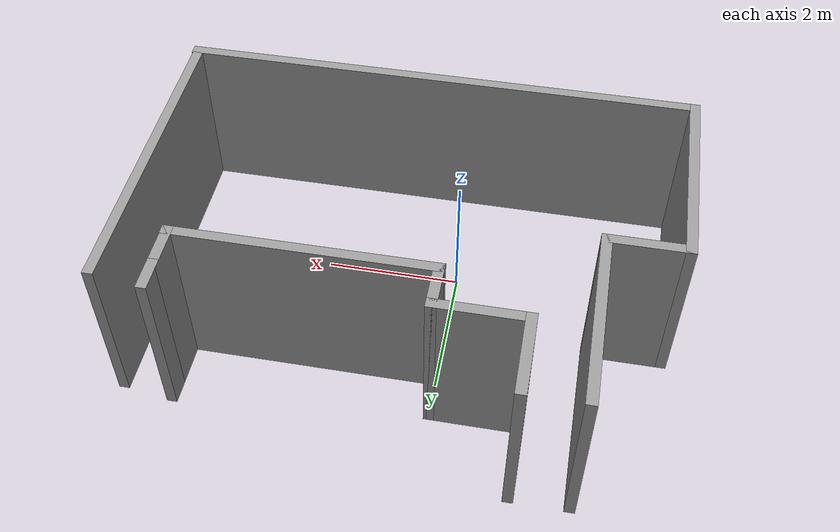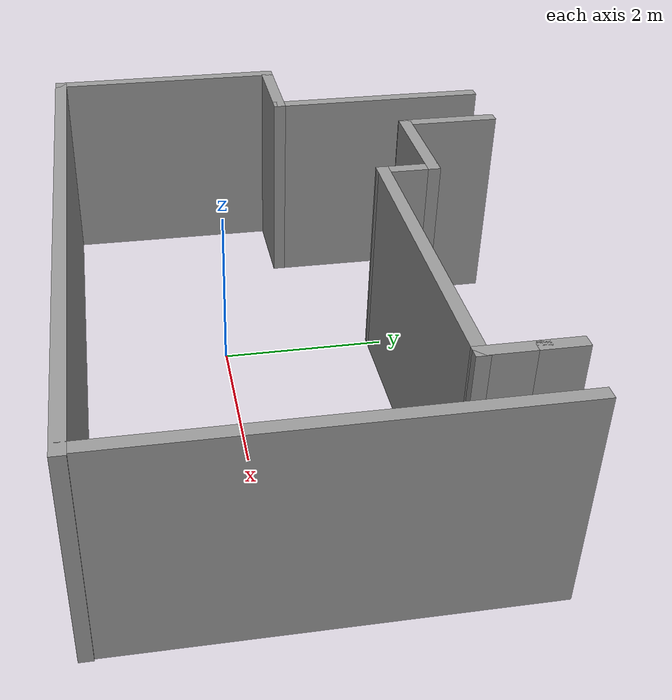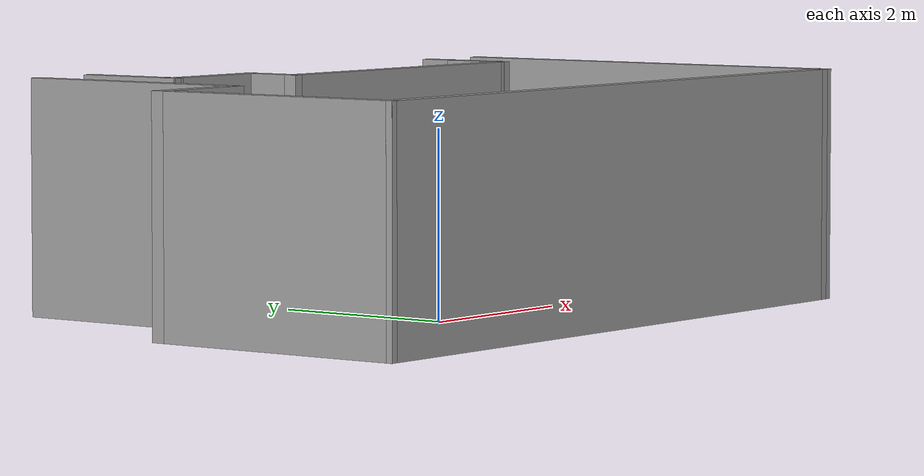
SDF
<?xml version='1.0'?>
<sdf version='1.6'>
  <model name='Untitled'>
    <pose frame=''>0.617227 0.882757 0 0 -0 0</pose>
    <link name='Wall_10'>
      <collision name='Wall_10_Collision'>
        <geometry>
          <box>
            <size>1.25 0.15 2.5</size>
          </box>
        </geometry>
        <pose frame=''>0 0 1.25 0 -0 0</pose>
      </collision>
      <visual name='Wall_10_Visual'>
        <pose frame=''>0 0 1.25 0 -0 0</pose>
        <geometry>
          <box>
            <size>1.25 0.15 2.5</size>
          </box>
        </geometry>
        <material>
          <script>
            <uri>file://media/materials/scripts/gazebo.material</uri>
            <name>Gazebo/Grey</name>
          </script>
          <ambient>1 1 1 1</ambient>
        </material>
      </visual>
      <pose frame=''>-3.2536 0.128458 0 0 -0 3.14159</pose>
    </link>
    <link name='Wall_11'>
      <collision name='Wall_11_Collision'>
        <geometry>
          <box>
            <size>3 0.15 2.5</size>
          </box>
        </geometry>
        <pose frame=''>0 0 1.25 0 -0 0</pose>
      </collision>
      <visual name='Wall_11_Visual'>
        <pose frame=''>0 0 1.25 0 -0 0</pose>
        <geometry>
          <box>
            <size>3 0.15 2.5</size>
          </box>
        </geometry>
        <material>
          <script>
            <uri>file://media/materials/scripts/gazebo.material</uri>
            <name>Gazebo/Grey</name>
          </script>
          <ambient>1 1 1 1</ambient>
        </material>
      </visual>
      <pose frame=''>-3.8036 -1.29654 0 0 0 -1.5708</pose>
    </link>
    <link name='Wall_12'>
      <collision name='Wall_12_Collision'>
        <geometry>
          <box>
            <size>7.75721 0.15 2.5</size>
          </box>
        </geometry>
        <pose frame=''>0 0 1.25 0 -0 0</pose>
      </collision>
      <visual name='Wall_12_Visual'>
        <pose frame=''>0 0 1.25 0 -0 0</pose>
        <geometry>
          <box>
            <size>7.75721 0.15 2.5</size>
          </box>
        </geometry>
        <material>
          <script>
            <uri>file://media/materials/scripts/gazebo.material</uri>
            <name>Gazebo/Grey</name>
          </script>
          <ambient>1 1 1 1</ambient>
        </material>
      </visual>
      <pose frame=''>0 -2.72502 0 0 0 -0.000915</pose>
    </link>
    <link name='Wall_13'>
      <collision name='Wall_13_Collision'>
        <geometry>
          <box>
            <size>4.75 0.15 2.5</size>
          </box>
        </geometry>
        <pose frame=''>0 0 1.25 0 -0 0</pose>
      </collision>
      <visual name='Wall_13_Visual'>
        <pose frame=''>0 0 1.25 0 -0 0</pose>
        <geometry>
          <box>
            <size>4.75 0.15 2.5</size>
          </box>
        </geometry>
        <material>
          <script>
            <uri>file://media/materials/scripts/gazebo.material</uri>
            <name>Gazebo/Grey</name>
          </script>
          <ambient>1 1 1 1</ambient>
        </material>
      </visual>
      <pose frame=''>3.78349 -0.428505 0 0 -0 1.5708</pose>
    </link>
    <link name='Wall_15'>
      <collision name='Wall_15_Collision'>
        <geometry>
          <box>
            <size>0.5 0.15 2.5</size>
          </box>
        </geometry>
        <pose frame=''>0 0 1.25 0 -0 0</pose>
      </collision>
      <visual name='Wall_15_Visual'>
        <pose frame=''>0 0 1.25 0 -0 0</pose>
        <geometry>
          <box>
            <size>0.5 0.15 2.5</size>
          </box>
        </geometry>
        <material>
          <script>
            <uri>file://media/materials/scripts/gazebo.material</uri>
            <name>Gazebo/Grey</name>
          </script>
          <ambient>1 1 1 1</ambient>
        </material>
      </visual>
      <pose frame=''>3.03158 1.80357 0 0 -0 1.5708</pose>
    </link>
    <link name='Wall_2'>
      <collision name='Wall_2_Collision'>
        <geometry>
          <box>
            <size>2.75 0.15 2.5</size>
          </box>
        </geometry>
        <pose frame=''>0 0 1.25 0 -0 0</pose>
      </collision>
      <visual name='Wall_2_Visual'>
        <pose frame=''>0 0 1.25 0 -0 0</pose>
        <geometry>
          <box>
            <size>2.75 0.15 2.5</size>
          </box>
        </geometry>
        <material>
          <script>
            <uri>file://media/materials/scripts/gazebo.material</uri>
            <name>Gazebo/Grey</name>
          </script>
          <ambient>1 1 1 1</ambient>
        </material>
      </visual>
      <pose frame=''>-2.7036 1.42846 0 0 0 -1.5708</pose>
    </link>
    <link name='Wall_4'>
      <collision name='Wall_4_Collision'>
        <geometry>
          <box>
            <size>1.25 0.15 2.5</size>
          </box>
        </geometry>
        <pose frame=''>0 0 1.25 0 -0 0</pose>
      </collision>
      <visual name='Wall_4_Visual'>
        <pose frame=''>0 0 1.25 0 -0 0</pose>
        <geometry>
          <box>
            <size>1.25 0.15 2.5</size>
          </box>
        </geometry>
        <material>
          <script>
            <uri>file://media/materials/scripts/gazebo.material</uri>
            <name>Gazebo/Grey</name>
          </script>
          <ambient>1 1 1 1</ambient>
        </material>
      </visual>
      <pose frame=''>-1.87909 2.17857 0 0 0 -1.5708</pose>
    </link>
    <link name='Wall_5'>
      <collision name='Wall_5_Collision'>
        <geometry>
          <box>
            <size>1.38796 0.15 2.5</size>
          </box>
        </geometry>
        <pose frame=''>0 0 1.25 0 -0 0</pose>
      </collision>
      <visual name='Wall_5_Visual'>
        <pose frame=''>0 0 1.25 0 -0 0</pose>
        <geometry>
          <box>
            <size>1.38796 0.15 2.5</size>
          </box>
        </geometry>
        <material>
          <script>
            <uri>file://media/materials/scripts/gazebo.material</uri>
            <name>Gazebo/Grey</name>
          </script>
          <ambient>1 1 1 1</ambient>
        </material>
      </visual>
      <pose frame=''>-1.23999 1.62857 0 0 -0 0</pose>
    </link>
    <link name='Wall_6'>
      <collision name='Wall_6_Collision'>
        <geometry>
          <box>
            <size>0.75 0.15 2.5</size>
          </box>
        </geometry>
        <pose frame=''>0 0 1.25 0 -0 0</pose>
      </collision>
      <visual name='Wall_6_Visual'>
        <pose frame=''>0 0 1.25 0 -0 0</pose>
        <geometry>
          <box>
            <size>0.75 0.15 2.5</size>
          </box>
        </geometry>
        <material>
          <script>
            <uri>file://media/materials/scripts/gazebo.material</uri>
            <name>Gazebo/Grey</name>
          </script>
          <ambient>1 1 1 1</ambient>
        </material>
      </visual>
      <pose frame=''>-0.621017 1.32857 0 0 0 -1.5708</pose>
    </link>
    <link name='Wall_7'>
      <collision name='Wall_7_Collision'>
        <geometry>
          <box>
            <size>3.80918 0.15 2.5</size>
          </box>
        </geometry>
        <pose frame=''>0 0 1.25 0 -0 0</pose>
      </collision>
      <visual name='Wall_7_Visual'>
        <pose frame=''>0 0 1.25 0 -0 0</pose>
        <geometry>
          <box>
            <size>3.80918 0.15 2.5</size>
          </box>
        </geometry>
        <material>
          <script>
            <uri>file://media/materials/scripts/gazebo.material</uri>
            <name>Gazebo/Grey</name>
          </script>
          <ambient>1 1 1 1</ambient>
        </material>
      </visual>
      <pose frame=''>1.20857 1.02857 0 0 -0 0</pose>
    </link>
    <link name='Wall_8'>
      <collision name='Wall_8_Collision'>
        <geometry>
          <box>
            <size>0.75 0.15 2.5</size>
          </box>
        </geometry>
        <pose frame=''>0 0 1.25 0 -0 0</pose>
      </collision>
      <visual name='Wall_8_Visual'>
        <pose frame=''>0 0 1.25 0 -0 0</pose>
        <geometry>
          <box>
            <size>0.75 0.15 2.5</size>
          </box>
        </geometry>
        <material>
          <script>
            <uri>file://media/materials/scripts/gazebo.material</uri>
            <name>Gazebo/Grey</name>
          </script>
          <ambient>1 1 1 1</ambient>
        </material>
      </visual>
      <pose frame=''>3.03158 1.32857 0 0 -0 1.5708</pose>
    </link>
    <static>1</static>
  </model>
</sdf>
